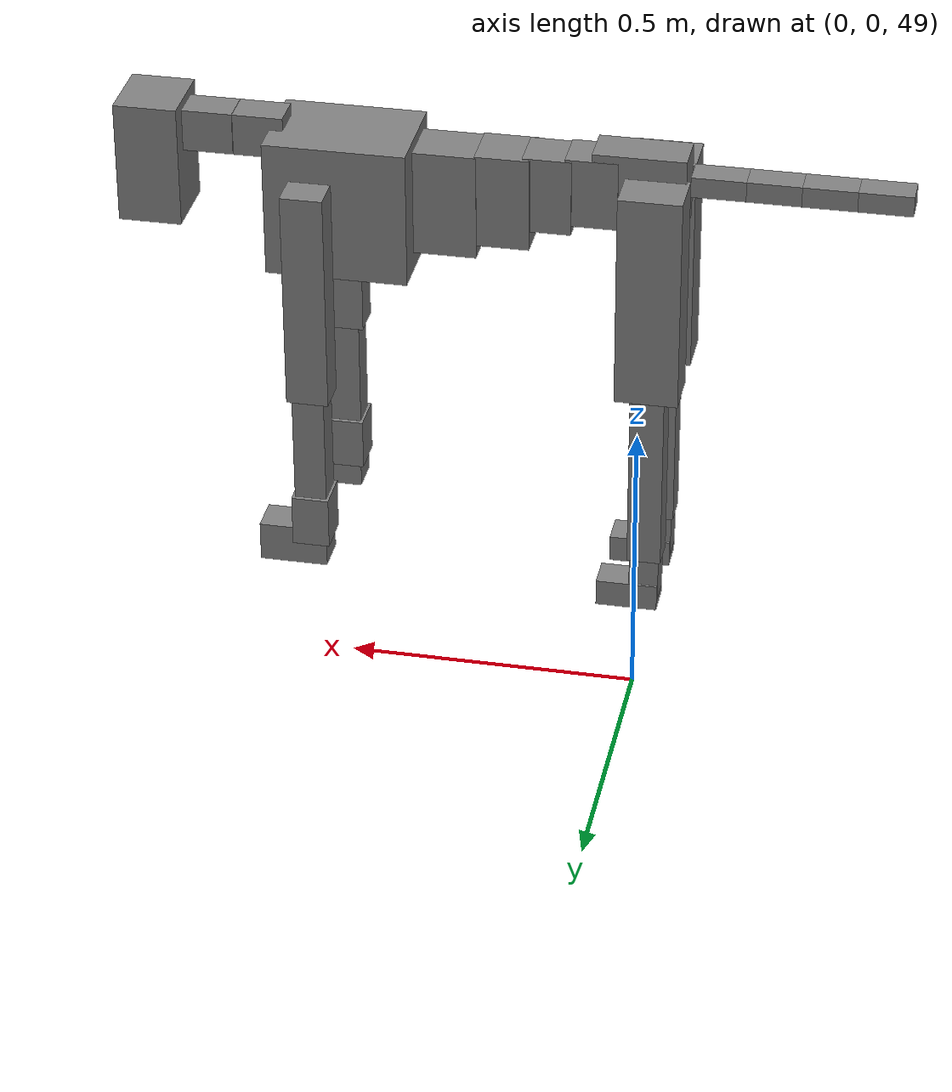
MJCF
<mujoco model="dog">

    <default>
        <joint armature="0.02" stiffness="1" damping="0.2" limited="true"/>
        <geom condim="3" friction="1 0.05 0.05" margin="0.01"/>
        <motor ctrllimited="true" ctrlrange="-1.0 1.0" forcelimited="true" gear="50"/>
    </default>

    <compiler inertiafromgeom="true" angle="radian"/>

    <option timestep="0.016" iterations="50" tolerance="1e-10" solver="Newton" jacobian="dense" cone="pyramidal"/>

    <size nconmax="20000" njmax="60000" nstack="5000000"/>
    <visual>
        <map force="0.1" zfar="30"/>
        <rgba haze="0.15 0.25 0.35 1"/>
        <quality shadowsize="2048"/>
        <global offwidth="800" offheight="800"/>
    </visual>

    <asset>
        <texture type="skybox" builtin="gradient" rgb1="0.3 0.5 0.7" rgb2="0 0 0" width="512" height="512"/>
        <texture name="texplane" type="2d" builtin="checker" rgb1=".2 .3 .4" rgb2=".1 0.15 0.2" width="512" height="512"
                 mark="cross" markrgb=".8 .8 .8"/>
        <texture name="texgeom" type="cube" builtin="flat" mark="cross" width="127" height="1278" rgb1="0.8 0.6 0.4"
                 rgb2="0.8 0.6 0.4" markrgb="1 1 1" random="0.01"/>

        <material name="matplane" reflectance="0.3" texture="texplane" texrepeat="1 1" texuniform="true"/>
        <material name="matgeom" texture="texgeom" texuniform="true" rgba="0.8 0.6 .4 1"/>
    </asset>

    <worldbody>
        <geom name="floor" pos="0 0 0" size="0 0 .25" type="plane" material="matplane" condim="3"/>

        <light directional="false" diffuse=".2 .2 .2" specular="0 0 0" pos="0 0 5" dir="0 0 -1" castshadow="false"/>
        <light mode="targetbodycom" target="torso" directional="false" diffuse=".8 .8 .8" specular="0.3 0.3 0.3"
               pos="0 0 4.0" dir="0 0 -1"/>

        <body name="root" pos="0 0 50">
            <freejoint name="root_1"/>
            <geom type="box" pos="0 0 -0.02" size="0.0774  0.0358  0.063" density="2030"/>

            <body name="spine1" pos="0.054 0 0">
                <joint name="spine1_y" axis="0 1 0" range="0 0.7" limited="true"/>
                <geom type="box" pos="0.02375 0 -0.03" size="0.04375  0.0375  0.05985" density="2030"/>

                <body name="spine2" pos="0.0612 0 0">
                    <joint name="spine2_y" axis="0 1 0" range="-0.15 0.15" limited="true"/>
                    <geom type="box" pos="0.03555  0  -0.04" size="0.04055  0.039  0.06615" density="2030"/>

                    <body name="spine3" pos="0.0730 0 0">
                        <joint name="spine3_y" axis="0 1 0" range="-0.15 0.15" limited="true"/>
                        <geom type="box" pos="0.03555  0  -0.057" size="0.04555  0.0445  0.081" density="2030"/>

                        <body name="spine4" pos="0.0780 0 0">
                            <joint name="spine4_y" axis="0 1 0" range="-0.15 0.15" limited="true"/>
                            <geom type="box" pos="0.05265  0  -0.07" size="0.05265  0.045  0.09135" density="2030"/>

                            <body name="torso" pos="0.1082 0 0">
                                <joint name="torso_y" axis="0 1 0" range="-0.15 0.15" limited="true"/>
                                <geom type="box" pos="0.11925  0  -0.085" size="0.11925  0.085  0.11745"
                                      density="2030"/>

                                <body name="neck1" pos="0.2160  0   0.0180">
                                    <joint name="neck1_y" axis="0 1 0" range="-1.2  -1" limited="true"/>
                                    <geom type="box" pos="0.0423  0  0" size="0.0423  0.03  0.036" density="2325"/>

                                    <body name="neck2" pos="0.0853  0  0">
                                        <joint name="neck2_y" axis="0 1 0" range="0.1  0" limited="true"/>
                                        <geom type="box" pos="0.0423  0  0" size="0.0423  0.03  0.036" density="2325"/>

                                        <body name="head" pos="0.0853  0  0">
                                            <joint name="head_y" axis="0 1 0" range="-0.3  -0.2" limited="true"/>
                                            <geom type="box" pos="0.0531  0  -0.055" size="0.0531  0.06  0.1044"
                                                  density="4030"/>

                                        </body>
                                    </body>
                                </body>

                                <body name="front_shoulder" pos="0.156  0   -0.0480">
                                    <joint name="front_shoulder_y" axis="0 1 0" range="-1 1.5" limited="true"/>
                                    <geom type="box" pos="0 0.13 -0.1642" size="0.0353  0.0301  0.1909" density="1158"/>
                                    <geom type="box" pos="0 -0.13 -0.1642" size="0.0353  0.0301  0.1909"
                                          density="1158"/>

                                    <body name="front_elbow" pos="0  0  -0.3285">
                                        <joint name="front_elbow_y" axis="0 1 0" range="-2 0" limited="true"/>
                                        <geom type="box" pos="0 0.13 -0.1125" size="0.0269  0.0275  0.1125"
                                              density="1081"/>
                                        <geom type="box" pos="0 -0.13 -0.1125" size="0.0269  0.0275  0.1125"
                                              density="1081"/>

                                        <body name="front_wrist" pos="0  0  -0.2249">
                                            <joint name="front_wrist_y" axis="0 1 0" range="-0.2 0" limited="true"/>
                                            <geom type="box" pos="0 0.13 -0.0314" size="0.0315  0.0350  0.0446"
                                                  density="1664"/>
                                            <geom type="box" pos="0 -0.13 -0.0314" size="0.0315  0.0350  0.0446"
                                                  density="1664"/>

                                            <body name="front_finger_end" pos="0  0  -0.0629">
                                                <joint name="front_finger_y" axis="0 1 0" range="-0.4 1"
                                                       limited="true"/>
                                                <geom type="box" pos="0.0315  0.13  -0.0193"
                                                      size="0.0578  0.0315  0.0343" density="1515"/>
                                                <geom type="box" pos="0.0315  -0.13  -0.0193"
                                                      size="0.0578  0.0315  0.0343" density="1515"/>

                                            </body>

                                        </body>
                                    </body>
                                </body>

                            </body>
                        </body>
                    </body>
                </body>
            </body>

            <body name="back_hip" pos="-0.03 0 -0.018">
                <joint name="back_hip_y" axis="0 1 0" range="-1.5 0.3" limited="true"/>
                <geom type="box" pos="0 0.07 -0.1638" size="0.0529  0.0415  0.1866" density="1154"/>
                <geom type="box" pos="0 -0.07 -0.1638" size="0.0529  0.0415  0.1866" density="1154"/>

                <body name="back_knee" pos="0  0  -0.3277">
                    <joint name="back_knee_y" axis="0 1 0" range="0 2.8" limited="true"/>
                    <geom type="box" pos="0 0.07 -0.1624" size="0.0285  0.0281  0.1779" density="1227"/>
                    <geom type="box" pos="0 -0.07 -0.1624" size="0.0285  0.0281  0.1779" density="1227"/>

                    <body name="back_ankle" pos="0  0  -0.3247">
                        <joint name="back_ankle_y" axis="0 1 0" range="-2.2 0" limited="true"/>
                        <geom type="box" pos="0 0.07 -0.0394" size="0.0248  0.0248  0.0507" density="1284"/>
                        <geom type="box" pos="0 -0.07 -0.0394" size="0.0248  0.0248  0.0507" density="1284"/>

                        <body name="back_toe_end" pos="0  0  -0.0788">
                            <joint name="back_toe_y" axis="0 1 0" range="-0.4 1" limited="true"/>
                            <geom type="box" pos="0.0284  0.07  -0.0084" size="0.0520  0.0284  0.0234" density="1515"/>
                            <geom type="box" pos="0.0284  -0.07  -0.0084" size="0.0520  0.0284  0.0234" density="1515"/>

                        </body>
                    </body>
                </body>
            </body>

            <body name="tail1" pos="-0.074 0 -0.006">
                <joint name="tail1_y" axis="0 1 0" range="-0.2 0.2" limited="true"/>
                <geom type="box" pos="-0.0536  0  0" size="0.045  0.025  0.0175" density="1587"/>

                <body name="tail2" pos="-0.09 0 0">
                    <joint name="tail2_y" axis="0 1 0" range="-0.2 0.2" limited="true"/>
                    <geom type="box" pos="-0.0536  0  0" size="0.045  0.025  0.0175" density="1587"/>

                    <body name="tail3" pos="-0.09 0 0">
                        <joint name="tail3_y" axis="0 1 0" range="-0.2 0.2" limited="true"/>
                        <geom type="box" pos="-0.0536  0  0" size="0.045  0.025  0.0175" density="1587"/>

                        <body name="tail4" pos="-0.09 0 0">
                            <joint name="tail4_y" axis="0 1 0" range="-0.2 0.2" limited="true"/>
                            <geom type="box" pos="-0.0536  0  0" size="0.045  0.025  0.0175" density="1587"/>

                        </body>
                    </body>
                </body>
            </body>
        </body>
    </worldbody>

    <actuator>
        <motor joint="spine1_y" forcerange="-150 150     "/>
        <motor joint="spine2_y" forcerange="-150 150     "/>
        <motor joint="spine3_y" forcerange="-150 150     "/>
        <motor joint="spine4_y" forcerange="-150 150     "/>
        <motor joint="torso_y" forcerange="-150 150     "/>
        <motor joint="neck1_y" forcerange="-100 100       "/>
        <motor joint="neck2_y" forcerange="-100 100       "/>
        <motor joint="head_y" forcerange="-150 150       "/>
        <motor joint="front_shoulder_y" forcerange="-175.59 125.35"/>
        <motor joint="front_elbow_y" forcerange="-174.38 125.38"/>
        <motor joint="front_wrist_y" forcerange="-145.35 134.93"/>
        <motor joint="front_finger_y" forcerange="-87.55 40.59"/>
        <motor joint="back_hip_y" forcerange="-367.92 385.78"/>
        <motor joint="back_knee_y" forcerange="-224.11 384.38"/>
        <motor joint="back_angle_y" forcerange="-83.77 212.35"/>
        <motor joint="back_toe_y" forcerange="-31.92 115.20"/>
        <motor joint="tail1_y" forcerange="-50 50     "/>
        <motor joint="tail2_y" forcerange="-50 50     "/>
        <motor joint="tail3_y" forcerange="-50 50     "/>
        <motor joint="tail4_y" forcerange="-50 50     "/>
    </actuator>
</mujoco>
